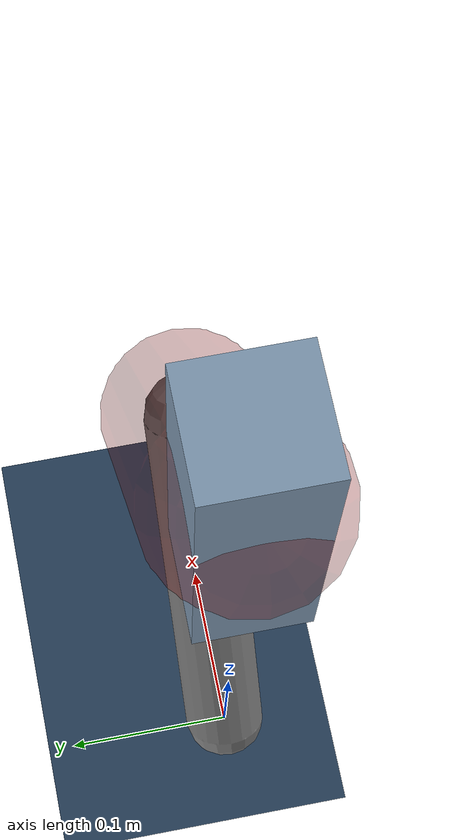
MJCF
<mujoco model="Hopper2D">
	<compiler inertiafromgeom="true" angle="radian" />
	<option timestep="0.001" integrator="implicit" cone="elliptic" solver="Newton" tolerance="1e-10" />

	<default>
		<geom contype="1" conaffinity="1" condim="3" friction="2 0.005 0.0001" solref="0.005 1" />
		<joint limited="true" damping="0.1" />
	</default>

	<asset>
		<texture name="skybox" type="skybox" builtin="gradient" rgb1=".4 .6 .8" rgb2="0 0 0" width="800" height="800" />
		<texture name="grid" type="2d" builtin="checker" rgb1=".1 .2 .3" rgb2=".2 .3 .4" width="300" height="300" mark="edge" markrgb=".2 .3 .4" />
		<material name="ground" texture="grid" texrepeat="1 1" texuniform="true" reflectance="0.1" />
		<material name="leg" rgba="0.5 0.6 0.7 1" />
	</asset>

	<worldbody>

		<geom name="floor" type="plane" size="5 5 0.25" material="ground" />

		<light directional="false" diffuse="0.8 0.8 0.8" specular="0.3 0.3 0.3" pos="0 0 2" dir="0 0 -1" />
		<light mode="targetbodycom" target="base" directional="false" diffuse="0.8 0.8 0.8" specular="0.3 0.3 0.3" pos="0 0 2" dir="0 0 -1" />

		<camera name="fixed" pos="0 -2 1" xyaxes="1 0 0 0 0 1" />
		<camera name="tracking" mode="trackcom" pos="0 -3 1" />

		<body name="root" pos="0 0 0.42292386484523564">
			<joint name="slide_x" type="slide" axis="1 0 0" range="-100 100" />
			<joint name="slide_z" type="slide" axis="0 0 1" range="0 10" />

			<body name="base" pos="0 0 0">
				<geom name="torso" type="box" size="0.03 0.03 0.1" mass="2.767" material="leg" />

				<body name="link1" pos="0 0 0" euler="0 1.0206194105795308 0">
					<joint type="hinge" axis="0 -1 0" pos="0 0 0" name="hinge1" limited="true" range="-3.14 3.14" stiffness="0" damping="0.1" />
					<geom name="thigh" type="capsule" fromto="0 0 0 0.25882454973770086 0 0" size="0.05" rgba="0.5 0 0 0.3" mass="0.8793438293180222" />

					<body name="link2" pos="0.25882454973770086 0 0" euler="0 1.1397554378980288 0">
						<joint type="hinge" axis="0 -1 0" pos="0 0 0" name="hinge2" limited="true" range="-3.14 3.14" stiffness="0" damping="0.1" />
						<geom name="shank" type="capsule" fromto="0 0 0 0.24338256387502033 0 0" size="0.025" mass="0.43704430748751827" />

					</body>
				</body>
			</body>
		</body>
	</worldbody>

	<actuator>
		<motor name="torque1" joint="hinge1" ctrlrange="-126.48172150427052 126.48172150427052" ctrllimited="true" gear="1" />
		<motor name="torque2" joint="hinge2" ctrlrange="-33.98164416645579 33.98164416645579" ctrllimited="true" gear="1" />
	</actuator>
</mujoco>
